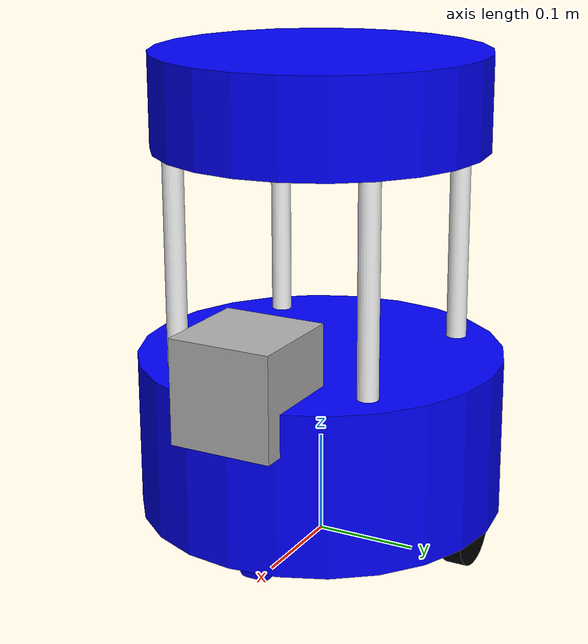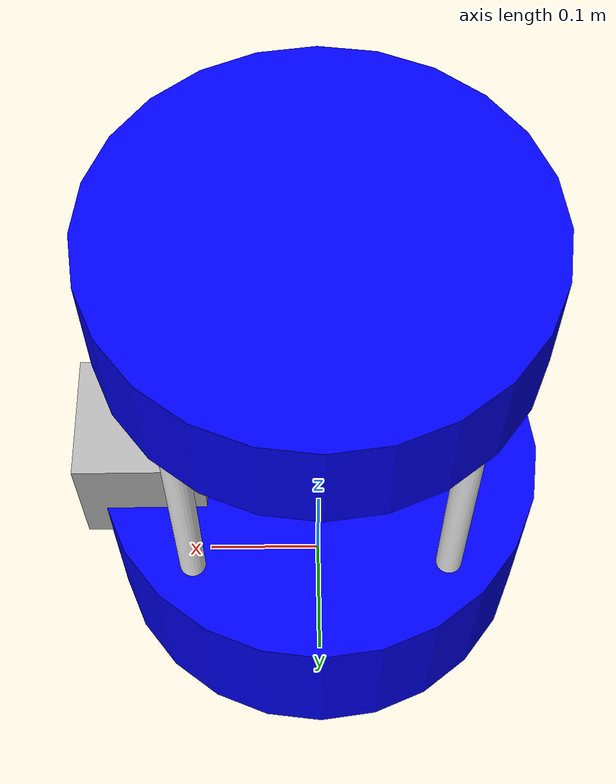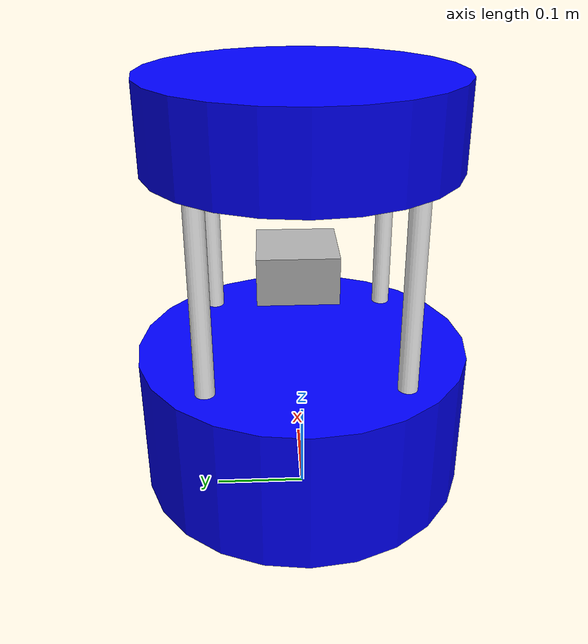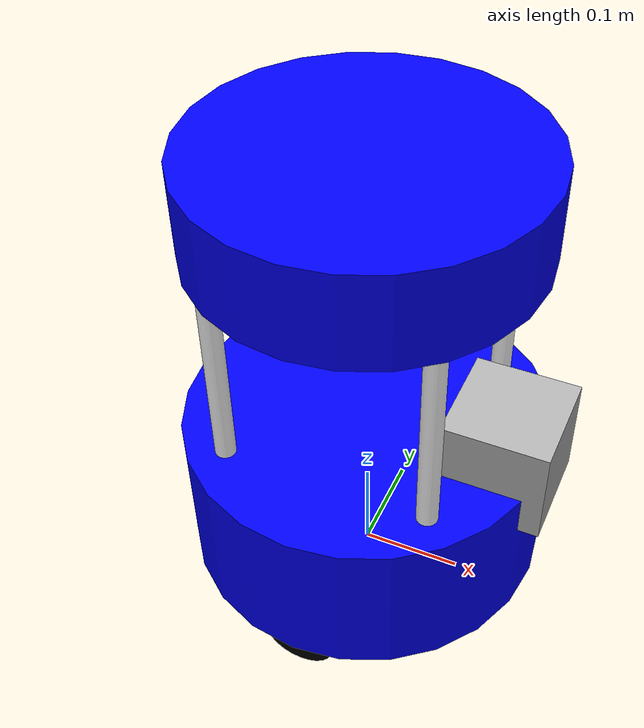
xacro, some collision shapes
<?xml version="1.0" ?>
<robot name="barista_robot" xmlns:xacro="http://www.ros.org/wiki/xacro">
<xacro:include filename="caster_wheel.xacro"/>
<xacro:include filename="standoff_rod.xacro"/>
<xacro:include filename="cup_holder_tray.xacro"/>
<xacro:include filename="drive_wheel.xacro"/>
<xacro:include filename="laser_scanner.xacro"/>
<xacro:property name="include_laser" value="true"/>
<material name="blue">
<color rgba = "0 0 1 1"/>
</material>
<material name="white">
<color rgba = "1 1 1 1"/>
</material>
<material name="black">
  <color rgba="0 0 0 1"/>
</material>

<!--base_link-->
<link name="base_footprint">
<origin xyz="0 0 0" rpy="0 0 0"/>
</link>
<link name="chassis">
 <inertial>
    <mass value="4.0"/>
    <inertia ixx="0.01" iyy="0.004" izz="0.015" ixy="0" ixz="0" iyz="0"/>
</inertial>
<visual>
<geometry>
<cylinder length="0.155" radius="0.178"/>
</geometry>
<origin xyz="0 0 0.1127" rpy=" 0 0 0"/>
<material name="blue"/>
</visual>
<collision>
<geometry>
<cylinder length="0.155" radius="0.178"/>
</geometry>
<origin xyz="0 0 0.1127" rpy=" 0 0 0"/>
</collision>
</link>

<!--joint chassis-->
<joint name="base_chassis_joint" type="fixed">
<parent link="base_footprint"/>
<child link="chassis"/>
<origin xyz="0 0 0" rpy="0 0 0"/>
</joint>
<gazebo reference="chassis">
  <material>Gazebo/Blue</material>

</gazebo>
<!--xacro definitions-->
<xacro:wheel side="left" xyz="0 0.155 0.0352"/>
<xacro:wheel side="right" xyz="0 -0.155 0.0352"/>
<!--caster wheel-->
<xacro:caster prefix="front" xyz="0.12 0 0.025"/>
<xacro:caster prefix="back" xyz="-0.12 0 0.025"/>
<!--standoff rods-->
<xacro:stand_off suffix="1" xyz="0.1 0.1 0.3"/>
<xacro:stand_off suffix="2" xyz="0.1 -0.1 0.3"/>
<xacro:stand_off suffix="3" xyz="-0.1 0.1 0.3"/>
<xacro:stand_off suffix="4" xyz="-0.1 -0.1 0.3"/>

<!--cupholder-->
<xacro:cup_holder/>
<xacro:if value="${include_laser}">
<xacro:laser/>
</xacro:if>
<!--diff drive-->

  <gazebo>
    <plugin filename="libgazebo_ros_diff_drive.so" name="differential_drive_controller">

      <!-- wheels -->
      <left_joint>left_wheel_joint</left_joint>
      <right_joint>right_wheel_joint</right_joint>

      <!-- kinematics -->
      <wheel_separation>0.31</wheel_separation>
      <wheel_diameter>0.0704</wheel_diameter>

      <!-- limits -->
      <max_wheel_torque>1.0</max_wheel_torque>
      <max_wheel_acceleration>2.0</max_wheel_acceleration>

      <!-- output -->
      <publish_odom>true</publish_odom>
      <publish_odom_tf>true</publish_odom_tf>

      <odometry_frame>odom</odometry_frame>
      <robot_base_frame>base_footprint</robot_base_frame>

    </plugin>
  </gazebo>
</robot>

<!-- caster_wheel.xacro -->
<robot name ="my_robot" xmlns:xacro="http://www.ros.org/wiki/xacro">

<xacro:macro name="caster" params="prefix xyz">
<link name="${prefix}_yaw_link">
  <inertial>
    <origin xyz="0 0 0" rpy="0 1.57 1.57"/>
    <mass value="0.5"/>
    <inertia ixx="0.0002" iyy="0.0002" izz="0.0003" ixy="0" ixz="0" iyz="0"/>
  </inertial>

  <visual>
    <origin xyz="0 0 0" rpy="0 1.57 1.57"/>
    <geometry>
      <cylinder length="0.019" radius="0.025"/>
    </geometry>
    <material name="blue"/>
  </visual>

  <collision>
    <origin xyz="0 0 0" rpy="0 1.57 1.57"/>
    <geometry>
      <cylinder length="0.019" radius="0.025"/>
    </geometry>
  </collision>
</link>

<joint name="${prefix}_yaw_joint" type="continuous">
  <parent link="chassis"/>
  <child link="${prefix}_yaw_link"/>
  <origin xyz="${xyz}" rpy="0 0 0"/>
  <axis xyz="0 0 1"/>
  <limit effort="1000.0" velocity="100.0"/>
  <dynamics damping="0.0" friction="0.1"/>
</joint>

<link name="${prefix}_pitch_link">
  <inertial>
    <origin xyz="0 0 0" rpy="0 1.57 1.57"/>
    <mass value="0.5"/>
    <inertia ixx="0.0002" iyy="0.0002" izz="0.0003" ixy="0" ixz="0" iyz="0"/>
  </inertial>

  <visual>
    <origin xyz="0 0 0" rpy="0 1.57 1.57"/>
    <geometry>
      <cylinder length="0.019" radius="0.025"/>
    </geometry>
    <material name="blue"/>
  </visual>

  <collision>
    <origin xyz="0 0 0" rpy="0 1.57 1.57"/>
    <geometry>
      <cylinder length="0.019" radius="0.025"/>
    </geometry>
  </collision>
</link>

<joint name="${prefix}_pitch_joint" type="continuous">
  <parent link="${prefix}_roll_link"/>
  <child link="${prefix}_pitch_link"/>
  <origin xyz="0 0 0" rpy="0 0 0"/>
  <axis xyz="0 1 0"/>
  <limit effort="1000.0" velocity="100.0"/>
  <dynamics damping="0.0" friction="0.1"/>
</joint>

<link name="${prefix}_roll_link">
  <inertial>
    <origin xyz="0 0 0" rpy="0 1.57 1.57"/>
    <mass value="0.5"/>
    <inertia ixx="0.0002" iyy="0.0002" izz="0.0003" ixy="0" ixz="0" iyz="0"/>
  </inertial>

  <visual>
    <origin xyz="0 0 0" rpy="0 1.57 1.57"/>
    <geometry>
      <cylinder length="0.019" radius="0.025"/>
    </geometry>
    <material name="blue"/>
  </visual>

  <collision>
    <origin xyz="0 0 0" rpy="0 1.57 1.57"/>
    <geometry>
      <cylinder length="0.019" radius="0.025"/>
    </geometry>
  </collision>
</link>

<joint name="${prefix}_roll_joint" type="continuous">
  <parent link="${prefix}_yaw_link"/>
  <child link="${prefix}_roll_link"/>
  <origin xyz="0 0 0" rpy="0 0 0"/>
  <axis xyz="1 0 0"/>
  <limit effort="1000.0" velocity="100.0"/>
  <dynamics damping="0.0" friction="0.1"/>
</joint>

<gazebo reference="${prefix}_yaw_link">
  <material>Gazebo/Blue</material>
  <kp>1000000000000000000000000000.0</kp>
    <kd>1000000000000000000000000000.0</kd>
    <mu1>0.1</mu1>
    <mu2>0.1</mu2>

</gazebo>

<gazebo reference="${prefix}_roll_link">
        <material>Gazebo/Red</material>
        <kp>1000000000000000000000000000.0</kp>
    <kd>1000000000000000000000000000.0</kd>
    <mu1>0.1</mu1>
    <mu2>0.1</mu2>
    </gazebo>
<gazebo reference="${prefix}_pitch_link">
 <kp>1000000000000000000000000000.0</kp>
    <kd>1000000000000000000000000000.0</kd>
    <mu1>0.1</mu1>
    <mu2>0.1</mu2>
    <material>Gazebo/Purple</material>
  </gazebo>
</xacro:macro>
</robot>

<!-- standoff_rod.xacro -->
<robot name ="my_robot" xmlns:xacro="http://www.ros.org/wiki/xacro">
<xacro:macro name="stand_off" params="suffix xyz">
<link name="rod_link_${suffix}">
  <inertial>
    <origin xyz="${xyz}" rpy="0 0 0"/>
    <mass value="0.5"/>
    <inertia ixx="0.0001" iyy="0.0001" izz="0.00015" ixy="0" ixz="0" iyz="0"/>
  </inertial>

  <visual>
    <geometry>
      <cylinder length="0.22" radius="0.01"/>
    </geometry>
    <origin xyz="${xyz}" rpy="0 0 0"/>
    <material name="white"/>
  </visual>

  <collision>
    <geometry>
      <cylinder length="0.22" radius="0.01"/>
    </geometry>
    <origin xyz="${xyz}" rpy="0 0 0"/>
  </collision>
</link>

<joint name="support_chassis_joint_${suffix}" type="fixed">
  <parent link="chassis"/>
  <child link="rod_link_${suffix}"/>
  <origin xyz="0 0 0"/>
</joint>

<gazebo reference="rod_link_${suffix}">
  <material>Gazebo/White</material>

</gazebo>
</xacro:macro>
</robot>

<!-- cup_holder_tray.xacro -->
<robot name ="my_robot" xmlns:xacro="http://www.ros.org/wiki/xacro">
<xacro:macro name="cup_holder">
<link name="top_base">
<visual>
<geometry>
<cylinder radius="0.16" length="0.09"/>
</geometry>
<origin xyz="0 0 0.436" rpy="0 0 0"/>
<material name="blue"/>
</visual>
<collision>
<geometry>
<cylinder radius="0.16" length="0.09"/>
</geometry>
<origin xyz="0 0 0.44" rpy="0 0 0"/>
</collision>
<inertial>
  <origin xyz="0 0 0.44" rpy="0 0 0"/>
  <mass value="2.0"/>
  <inertia ixx="0.0141" iyy="0.0141" izz="0.0256" ixy="0" ixz="0" iyz="0"/>
</inertial>

</link>
<joint name="top_base_chassis" type="fixed">
<parent link="chassis"/>
<child link="top_base"/>
<origin xyz="0 0 0" rpy="0 0 0"/>
</joint>
<gazebo reference="top_base">
  <material>Gazebo/Blue</material>

</gazebo>
</xacro:macro>
</robot>

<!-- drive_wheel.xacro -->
<robot name ="my_robot" xmlns:xacro="http://www.ros.org/wiki/xacro">
<xacro:macro name="wheel" params="side xyz">
<link name="base_${side}_wheel_link">
  <inertial>
    <mass value="2"/>
    <inertia ixx="0.00013" iyy="0.00013" izz="0.00021" ixy="0" ixz="0" iyz="0"/>
</inertial>

  <visual>
    <geometry>
      <cylinder length="0.0206" radius="0.0352"/>
    </geometry>
    <material name="black"/>
    <origin xyz="0 0 0" rpy="0 0 0"/>
  </visual>
  <collision>
    <geometry>
      <cylinder length="0.0206" radius="0.0352"/>
    </geometry>
    <origin xyz="0 0 0" rpy="0 0 0"/>
  </collision>
</link>
<joint name="${side}_wheel_joint" type="continuous">
  <parent link="chassis"/>
  <child link="base_${side}_wheel_link"/>
  <origin xyz="${xyz}" rpy="-1.57 0 0"/>  <!-- Updated to use ${xyz} -->
  <axis xyz="0 0 1"/>
  <dynamics friction="0.1"/>
</joint>
<gazebo reference="base_${side}_wheel_link">
 <material>Gazebo/Black</material>
    <kp>1000000000000000000000000000.0</kp>
    <kd>1000000000000000000000000000.0</kd>
    <mu1>1.0</mu1>
    <mu2>1.0</mu2>
</gazebo>

</xacro:macro>
</robot>

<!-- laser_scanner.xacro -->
<robot name ="my_robot" xmlns:xacro="http://www.ros.org/wiki/xacro">
<xacro:macro name="laser">

<link name = "laser_scan_link">
 <inertial>
    <mass value="1.0"/>
    <inertia ixx="0.00104" ixy="0.0" ixz="0.0"
             iyy="0.00104" iyz="0.0"
             izz="0.0001666"/>
</inertial>

  <visual>
    <geometry>
      <mesh filename="package://barista_robot_description/models/meshes/hokuyo_urg_04lx.dae" scale="1 1 1"/>

    </geometry>
    <origin xyz="0.14 0 0.19" rpy="0 0 0"/>
  </visual>
  <collision>
    <geometry>
      <box size="0.1 0.1 0.1"/>
    </geometry>
    <origin xyz="0.14 0 0.2" rpy="0 0 0"/>
  </collision>
</link>

<joint name="laser_joint" type="fixed">
  <parent link="chassis"/>
  <child link="laser_scan_link"/>
  <origin xyz="0 0 0" rpy="0 0 0"/>
</joint>
<link name="laser_scan_frame">
</link>
<joint name="laser_joint_frame" type="fixed">
<parent link="laser_scan_link"/>
<child link="laser_scan_frame"/>
<origin xyz="0.14 0 0.25" rpy="0 0 0"/>
</joint>
  <gazebo reference="laser_scan_link">
</gazebo>

<gazebo reference="laser_scan_frame">
    <sensor name="sensor_ray" type="ray">
        <pose>0.14 0 0.25 0 0 0</pose>
        <ray>
          <scan>
            <horizontal>
              <samples>200</samples>
              <resolution>1.0</resolution>
              <min_angle>-1.57</min_angle>
              <max_angle>1.57</max_angle>
            </horizontal>
          </scan>
          <range>
            <min>0.1</min>
            <max>5.0</max>
          </range>
        </ray>
        <always_on>true</always_on>
        <visualize>true</visualize>
        <update_rate>30</update_rate>
        <plugin name="laser" filename="libgazebo_ros_ray_sensor.so">
          <ros>
            <remapping>~/out:=scan</remapping>
          </ros>
          <output_type>sensor_msgs/LaserScan</output_type>
          <frame_name>laser_scan_frame</frame_name>
        </plugin>
    </sensor>
</gazebo>
</xacro:macro>
</robot>
